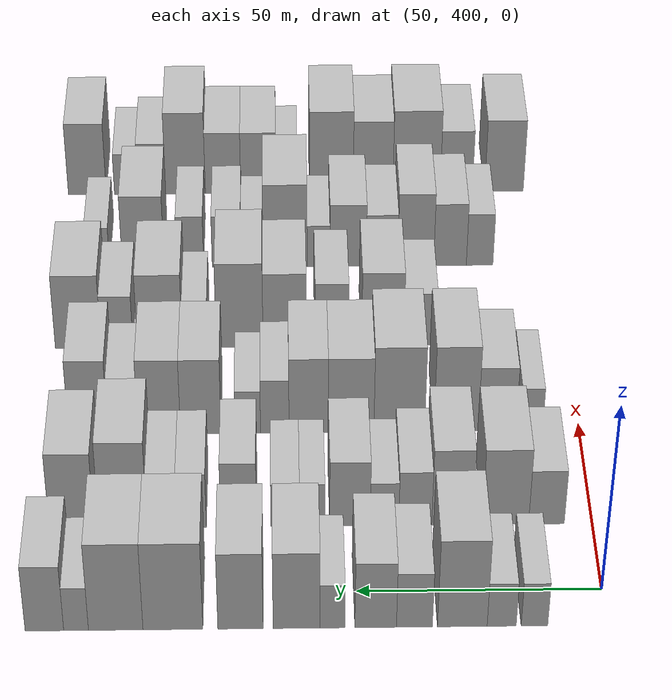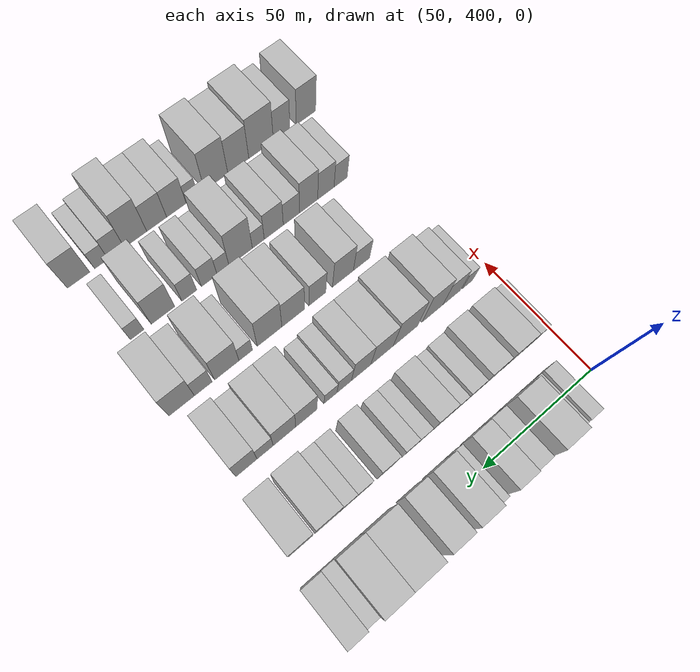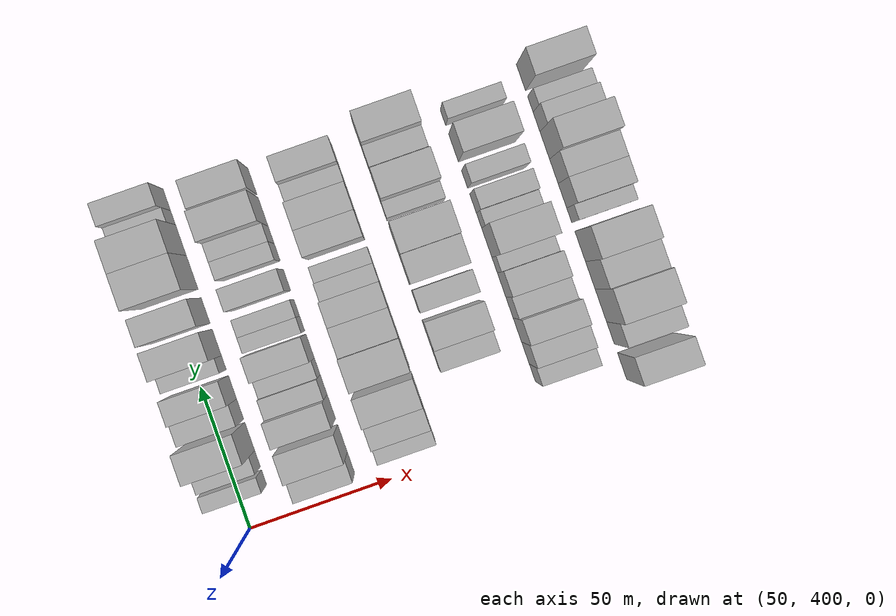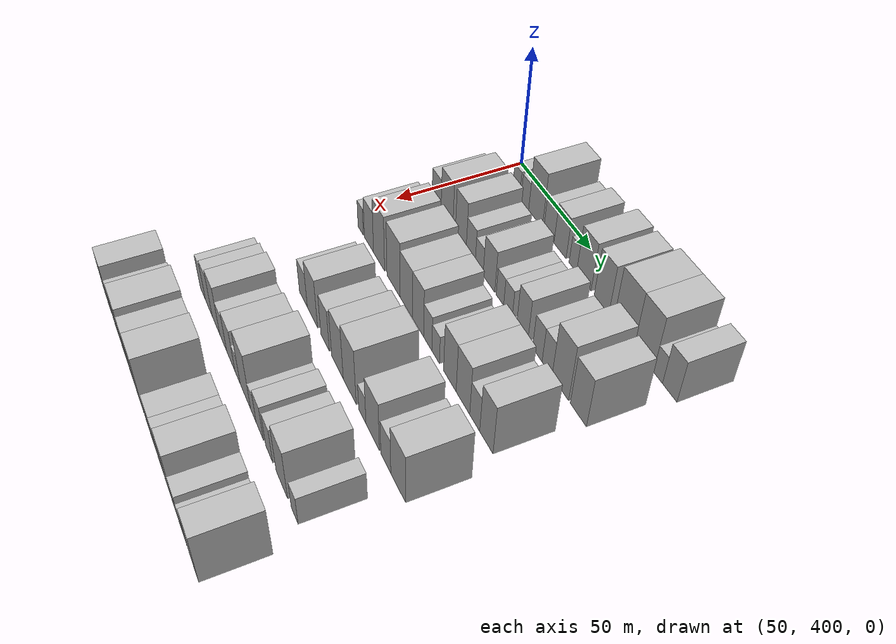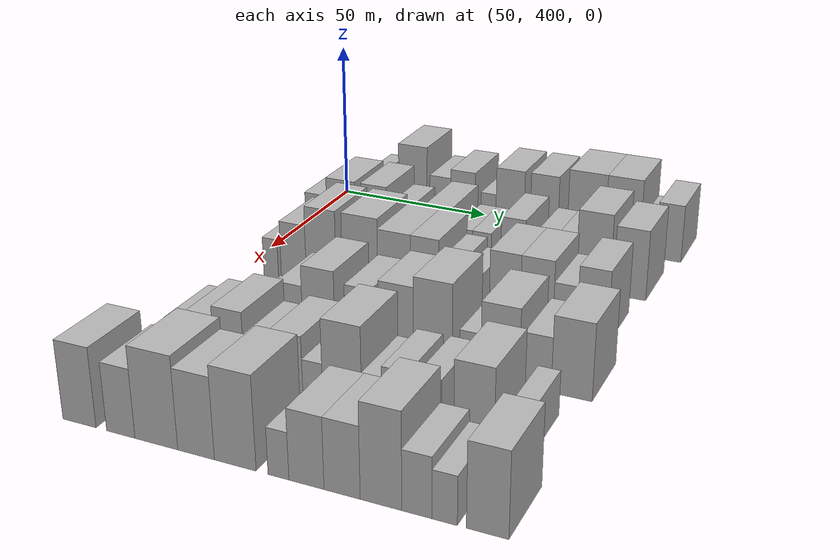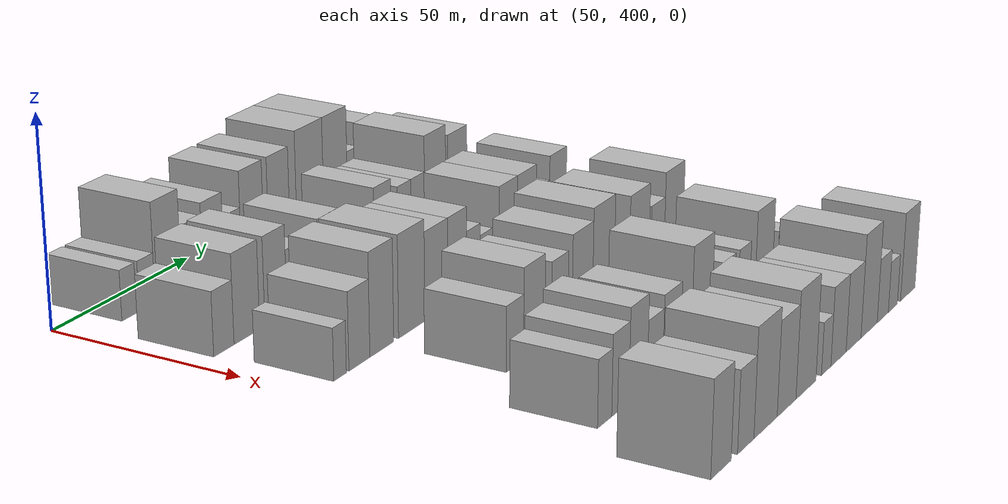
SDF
<sdf version="1.6">
 <world name="default">
  <model name="building_109">
   <static>1</static>
   <pose>50.0000 414.5718 0 0.000000 0.000000 0.000000</pose>
   <link name="link">
    <pose>0 0 6.00 0 0 0</pose>
    <collision name="collision"><geometry><box><size>20.0000 5.3269 12.0000</size></box></geometry></collision>
    <visual name="visual">
     <cast_shadows>0</cast_shadows>
     <geometry><box><size>20.0000 5.3269 12.0000</size></box></geometry>
     <material>
      <script>
       <uri>model://HANNAS_wall/materials/scripts</uri>
       <uri>model://HANNAS_wall/materials/textures</uri>
       <name>vrc/HANNAS_wall</name>
      </script>
     </material>
    </visual>
   </link>
  </model>
  <model name="building_110">
   <static>1</static>
   <pose>50.0000 421.1503 0 0.000000 0.000000 0.000000</pose>
   <link name="link">
    <pose>0 0 6.00 0 0 0</pose>
    <collision name="collision"><geometry><box><size>20.0000 5.8300 12.0000</size></box></geometry></collision>
    <visual name="visual">
     <cast_shadows>0</cast_shadows>
     <geometry><box><size>20.0000 5.8300 12.0000</size></box></geometry>
     <material>
      <script>
       <uri>model://HANNAS_wall/materials/scripts</uri>
       <uri>model://HANNAS_wall/materials/textures</uri>
       <name>vrc/HANNAS_wall</name>
      </script>
     </material>
    </visual>
   </link>
  </model>
  <model name="building_111">
   <static>1</static>
   <pose>50.0000 429.0462 0 0.000000 0.000000 0.000000</pose>
   <link name="link">
    <pose>0 0 12.00 0 0 0</pose>
    <collision name="collision"><geometry><box><size>20.0000 9.9617 24.0000</size></box></geometry></collision>
    <visual name="visual">
     <cast_shadows>0</cast_shadows>
     <geometry><box><size>20.0000 9.9617 24.0000</size></box></geometry>
     <material>
      <script>
       <uri>model://HANNAS_wall/materials/scripts</uri>
       <uri>model://HANNAS_wall/materials/textures</uri>
       <name>vrc/HANNAS_wall</name>
      </script>
     </material>
    </visual>
   </link>
  </model>
  <model name="building_112">
   <static>1</static>
   <pose>50.0000 438.6366 0 0.000000 0.000000 0.000000</pose>
   <link name="link">
    <pose>0 0 7.50 0 0 0</pose>
    <collision name="collision"><geometry><box><size>20.0000 7.2191 15.0000</size></box></geometry></collision>
    <visual name="visual">
     <cast_shadows>0</cast_shadows>
     <geometry><box><size>20.0000 7.2191 15.0000</size></box></geometry>
     <material>
      <script>
       <uri>model://HANNAS_wall/materials/scripts</uri>
       <uri>model://HANNAS_wall/materials/textures</uri>
       <name>vrc/HANNAS_wall</name>
      </script>
     </material>
    </visual>
   </link>
  </model>
  <model name="building_113">
   <static>1</static>
   <pose>50.0000 446.4037 0 0.000000 0.000000 0.000000</pose>
   <link name="link">
    <pose>0 0 9.00 0 0 0</pose>
    <collision name="collision"><geometry><box><size>20.0000 8.3152 18.0000</size></box></geometry></collision>
    <visual name="visual">
     <cast_shadows>0</cast_shadows>
     <geometry><box><size>20.0000 8.3152 18.0000</size></box></geometry>
     <material>
      <script>
       <uri>model://HANNAS_wall/materials/scripts</uri>
       <uri>model://HANNAS_wall/materials/textures</uri>
       <name>vrc/HANNAS_wall</name>
      </script>
     </material>
    </visual>
   </link>
  </model>
  <model name="building_114">
   <static>1</static>
   <pose>50.0000 455.0654 0 0.000000 0.000000 0.000000</pose>
   <link name="link">
    <pose>0 0 6.00 0 0 0</pose>
    <collision name="collision"><geometry><box><size>20.0000 5.0082 12.0000</size></box></geometry></collision>
    <visual name="visual">
     <cast_shadows>0</cast_shadows>
     <geometry><box><size>20.0000 5.0082 12.0000</size></box></geometry>
     <material>
      <script>
       <uri>model://HANNAS_wall/materials/scripts</uri>
       <uri>model://HANNAS_wall/materials/textures</uri>
       <name>vrc/HANNAS_wall</name>
      </script>
     </material>
    </visual>
   </link>
  </model>
  <model name="building_115">
   <static>1</static>
   <pose>50.0000 462.2481 0 0.000000 0.000000 0.000000</pose>
   <link name="link">
    <pose>0 0 10.50 0 0 0</pose>
    <collision name="collision"><geometry><box><size>20.0000 9.3573 21.0000</size></box></geometry></collision>
    <visual name="visual">
     <cast_shadows>0</cast_shadows>
     <geometry><box><size>20.0000 9.3573 21.0000</size></box></geometry>
     <material>
      <script>
       <uri>model://HANNAS_wall/materials/scripts</uri>
       <uri>model://HANNAS_wall/materials/textures</uri>
       <name>vrc/HANNAS_wall</name>
      </script>
     </material>
    </visual>
   </link>
  </model>
  <model name="building_116">
   <static>1</static>
   <pose>50.0000 473.4553 0 0.000000 0.000000 0.000000</pose>
   <link name="link">
    <pose>0 0 10.50 0 0 0</pose>
    <collision name="collision"><geometry><box><size>20.0000 9.0570 21.0000</size></box></geometry></collision>
    <visual name="visual">
     <cast_shadows>0</cast_shadows>
     <geometry><box><size>20.0000 9.0570 21.0000</size></box></geometry>
     <material>
      <script>
       <uri>model://HANNAS_wall/materials/scripts</uri>
       <uri>model://HANNAS_wall/materials/textures</uri>
       <name>vrc/HANNAS_wall</name>
      </script>
     </material>
    </visual>
   </link>
  </model>
  <model name="building_117">
   <static>1</static>
   <pose>50.0000 486.9724 0 0.000000 0.000000 0.000000</pose>
   <link name="link">
    <pose>0 0 12.00 0 0 0</pose>
    <collision name="collision"><geometry><box><size>20.0000 11.9771 24.0000</size></box></geometry></collision>
    <visual name="visual">
     <cast_shadows>0</cast_shadows>
     <geometry><box><size>20.0000 11.9771 24.0000</size></box></geometry>
     <material>
      <script>
       <uri>model://HANNAS_wall/materials/scripts</uri>
       <uri>model://HANNAS_wall/materials/textures</uri>
       <name>vrc/HANNAS_wall</name>
      </script>
     </material>
    </visual>
   </link>
  </model>
  <model name="building_118">
   <static>1</static>
   <pose>50.0000 498.4089 0 0.000000 0.000000 0.000000</pose>
   <link name="link">
    <pose>0 0 12.00 0 0 0</pose>
    <collision name="collision"><geometry><box><size>20.0000 10.8959 24.0000</size></box></geometry></collision>
    <visual name="visual">
     <cast_shadows>0</cast_shadows>
     <geometry><box><size>20.0000 10.8959 24.0000</size></box></geometry>
     <material>
      <script>
       <uri>model://HANNAS_wall/materials/scripts</uri>
       <uri>model://HANNAS_wall/materials/textures</uri>
       <name>vrc/HANNAS_wall</name>
      </script>
     </material>
    </visual>
   </link>
  </model>
  <model name="building_119">
   <static>1</static>
   <pose>50.0000 506.3316 0 0.000000 0.000000 0.000000</pose>
   <link name="link">
    <pose>0 0 6.00 0 0 0</pose>
    <collision name="collision"><geometry><box><size>20.0000 4.9494 12.0000</size></box></geometry></collision>
    <visual name="visual">
     <cast_shadows>0</cast_shadows>
     <geometry><box><size>20.0000 4.9494 12.0000</size></box></geometry>
     <material>
      <script>
       <uri>model://HANNAS_wall/materials/scripts</uri>
       <uri>model://HANNAS_wall/materials/textures</uri>
       <name>vrc/HANNAS_wall</name>
      </script>
     </material>
    </visual>
   </link>
  </model>
  <model name="building_120">
   <static>1</static>
   <pose>50.0000 512.6554 0 0.000000 0.000000 0.000000</pose>
   <link name="link">
    <pose>0 0 9.00 0 0 0</pose>
    <collision name="collision"><geometry><box><size>20.0000 7.6981 18.0000</size></box></geometry></collision>
    <visual name="visual">
     <cast_shadows>0</cast_shadows>
     <geometry><box><size>20.0000 7.6981 18.0000</size></box></geometry>
     <material>
      <script>
       <uri>model://HANNAS_wall/materials/scripts</uri>
       <uri>model://HANNAS_wall/materials/textures</uri>
       <name>vrc/HANNAS_wall</name>
      </script>
     </material>
    </visual>
   </link>
  </model>
  <model name="building_224">
   <static>1</static>
   <pose>79.0000 409.6688 0 0.000000 0.000000 0.000000</pose>
   <link name="link">
    <pose>0 0 7.50 0 0 0</pose>
    <collision name="collision"><geometry><box><size>20.0000 7.4757 15.0000</size></box></geometry></collision>
    <visual name="visual">
     <cast_shadows>0</cast_shadows>
     <geometry><box><size>20.0000 7.4757 15.0000</size></box></geometry>
     <material>
      <script>
       <uri>model://HANNAS_wall/materials/scripts</uri>
       <uri>model://HANNAS_wall/materials/textures</uri>
       <name>vrc/HANNAS_wall</name>
      </script>
     </material>
    </visual>
   </link>
  </model>
  <model name="building_225">
   <static>1</static>
   <pose>79.0000 418.2588 0 0.000000 0.000000 0.000000</pose>
   <link name="link">
    <pose>0 0 10.50 0 0 0</pose>
    <collision name="collision"><geometry><box><size>20.0000 9.7043 21.0000</size></box></geometry></collision>
    <visual name="visual">
     <cast_shadows>0</cast_shadows>
     <geometry><box><size>20.0000 9.7043 21.0000</size></box></geometry>
     <material>
      <script>
       <uri>model://HANNAS_wall/materials/scripts</uri>
       <uri>model://HANNAS_wall/materials/textures</uri>
       <name>vrc/HANNAS_wall</name>
      </script>
     </material>
    </visual>
   </link>
  </model>
  <model name="building_226">
   <static>1</static>
   <pose>79.0000 429.3999 0 0.000000 0.000000 0.000000</pose>
   <link name="link">
    <pose>0 0 10.50 0 0 0</pose>
    <collision name="collision"><geometry><box><size>20.0000 8.5780 21.0000</size></box></geometry></collision>
    <visual name="visual">
     <cast_shadows>0</cast_shadows>
     <geometry><box><size>20.0000 8.5780 21.0000</size></box></geometry>
     <material>
      <script>
       <uri>model://HANNAS_wall/materials/scripts</uri>
       <uri>model://HANNAS_wall/materials/textures</uri>
       <name>vrc/HANNAS_wall</name>
      </script>
     </material>
    </visual>
   </link>
  </model>
  <model name="building_227">
   <static>1</static>
   <pose>79.0000 437.1485 0 0.000000 0.000000 0.000000</pose>
   <link name="link">
    <pose>0 0 7.50 0 0 0</pose>
    <collision name="collision"><geometry><box><size>20.0000 6.9192 15.0000</size></box></geometry></collision>
    <visual name="visual">
     <cast_shadows>0</cast_shadows>
     <geometry><box><size>20.0000 6.9192 15.0000</size></box></geometry>
     <material>
      <script>
       <uri>model://HANNAS_wall/materials/scripts</uri>
       <uri>model://HANNAS_wall/materials/textures</uri>
       <name>vrc/HANNAS_wall</name>
      </script>
     </material>
    </visual>
   </link>
  </model>
  <model name="building_228">
   <static>1</static>
   <pose>79.0000 443.5894 0 0.000000 0.000000 0.000000</pose>
   <link name="link">
    <pose>0 0 6.00 0 0 0</pose>
    <collision name="collision"><geometry><box><size>20.0000 5.9624 12.0000</size></box></geometry></collision>
    <visual name="visual">
     <cast_shadows>0</cast_shadows>
     <geometry><box><size>20.0000 5.9624 12.0000</size></box></geometry>
     <material>
      <script>
       <uri>model://HANNAS_wall/materials/scripts</uri>
       <uri>model://HANNAS_wall/materials/textures</uri>
       <name>vrc/HANNAS_wall</name>
      </script>
     </material>
    </visual>
   </link>
  </model>
  <model name="building_229">
   <static>1</static>
   <pose>79.0000 450.8058 0 0.000000 0.000000 0.000000</pose>
   <link name="link">
    <pose>0 0 9.00 0 0 0</pose>
    <collision name="collision"><geometry><box><size>20.0000 8.4704 18.0000</size></box></geometry></collision>
    <visual name="visual">
     <cast_shadows>0</cast_shadows>
     <geometry><box><size>20.0000 8.4704 18.0000</size></box></geometry>
     <material>
      <script>
       <uri>model://HANNAS_wall/materials/scripts</uri>
       <uri>model://HANNAS_wall/materials/textures</uri>
       <name>vrc/HANNAS_wall</name>
      </script>
     </material>
    </visual>
   </link>
  </model>
  <model name="building_230">
   <static>1</static>
   <pose>79.0000 458.6949 0 0.000000 0.000000 0.000000</pose>
   <link name="link">
    <pose>0 0 6.00 0 0 0</pose>
    <collision name="collision"><geometry><box><size>20.0000 5.3078 12.0000</size></box></geometry></collision>
    <visual name="visual">
     <cast_shadows>0</cast_shadows>
     <geometry><box><size>20.0000 5.3078 12.0000</size></box></geometry>
     <material>
      <script>
       <uri>model://HANNAS_wall/materials/scripts</uri>
       <uri>model://HANNAS_wall/materials/textures</uri>
       <name>vrc/HANNAS_wall</name>
      </script>
     </material>
    </visual>
   </link>
  </model>
  <model name="building_231">
   <static>1</static>
   <pose>79.0000 464.3218 0 0.000000 0.000000 0.000000</pose>
   <link name="link">
    <pose>0 0 6.00 0 0 0</pose>
    <collision name="collision"><geometry><box><size>20.0000 5.9460 12.0000</size></box></geometry></collision>
    <visual name="visual">
     <cast_shadows>0</cast_shadows>
     <geometry><box><size>20.0000 5.9460 12.0000</size></box></geometry>
     <material>
      <script>
       <uri>model://HANNAS_wall/materials/scripts</uri>
       <uri>model://HANNAS_wall/materials/textures</uri>
       <name>vrc/HANNAS_wall</name>
      </script>
     </material>
    </visual>
   </link>
  </model>
  <model name="building_232">
   <static>1</static>
   <pose>79.0000 474.0422 0 0.000000 0.000000 0.000000</pose>
   <link name="link">
    <pose>0 0 9.00 0 0 0</pose>
    <collision name="collision"><geometry><box><size>20.0000 7.4949 18.0000</size></box></geometry></collision>
    <visual name="visual">
     <cast_shadows>0</cast_shadows>
     <geometry><box><size>20.0000 7.4949 18.0000</size></box></geometry>
     <material>
      <script>
       <uri>model://HANNAS_wall/materials/scripts</uri>
       <uri>model://HANNAS_wall/materials/textures</uri>
       <name>vrc/HANNAS_wall</name>
      </script>
     </material>
    </visual>
   </link>
  </model>
  <model name="building_233">
   <static>1</static>
   <pose>79.0000 483.8710 0 0.000000 0.000000 0.000000</pose>
   <link name="link">
    <pose>0 0 7.50 0 0 0</pose>
    <collision name="collision"><geometry><box><size>20.0000 6.1628 15.0000</size></box></geometry></collision>
    <visual name="visual">
     <cast_shadows>0</cast_shadows>
     <geometry><box><size>20.0000 6.1628 15.0000</size></box></geometry>
     <material>
      <script>
       <uri>model://HANNAS_wall/materials/scripts</uri>
       <uri>model://HANNAS_wall/materials/textures</uri>
       <name>vrc/HANNAS_wall</name>
      </script>
     </material>
    </visual>
   </link>
  </model>
  <model name="building_234">
   <static>1</static>
   <pose>79.0000 490.0632 0 0.000000 0.000000 0.000000</pose>
   <link name="link">
    <pose>0 0 7.50 0 0 0</pose>
    <collision name="collision"><geometry><box><size>20.0000 6.2217 15.0000</size></box></geometry></collision>
    <visual name="visual">
     <cast_shadows>0</cast_shadows>
     <geometry><box><size>20.0000 6.2217 15.0000</size></box></geometry>
     <material>
      <script>
       <uri>model://HANNAS_wall/materials/scripts</uri>
       <uri>model://HANNAS_wall/materials/textures</uri>
       <name>vrc/HANNAS_wall</name>
      </script>
     </material>
    </visual>
   </link>
  </model>
  <model name="building_235">
   <static>1</static>
   <pose>79.0000 498.2062 0 0.000000 0.000000 0.000000</pose>
   <link name="link">
    <pose>0 0 12.00 0 0 0</pose>
    <collision name="collision"><geometry><box><size>20.0000 10.0642 24.0000</size></box></geometry></collision>
    <visual name="visual">
     <cast_shadows>0</cast_shadows>
     <geometry><box><size>20.0000 10.0642 24.0000</size></box></geometry>
     <material>
      <script>
       <uri>model://HANNAS_wall/materials/scripts</uri>
       <uri>model://HANNAS_wall/materials/textures</uri>
       <name>vrc/HANNAS_wall</name>
      </script>
     </material>
    </visual>
   </link>
  </model>
  <model name="building_236">
   <static>1</static>
   <pose>79.0000 508.9163 0 0.000000 0.000000 0.000000</pose>
   <link name="link">
    <pose>0 0 10.50 0 0 0</pose>
    <collision name="collision"><geometry><box><size>20.0000 9.3560 21.0000</size></box></geometry></collision>
    <visual name="visual">
     <cast_shadows>0</cast_shadows>
     <geometry><box><size>20.0000 9.3560 21.0000</size></box></geometry>
     <material>
      <script>
       <uri>model://HANNAS_wall/materials/scripts</uri>
       <uri>model://HANNAS_wall/materials/textures</uri>
       <name>vrc/HANNAS_wall</name>
      </script>
     </material>
    </visual>
   </link>
  </model>
  <model name="building_341">
   <static>1</static>
   <pose>108.0000 410.4109 0 0.000000 0.000000 0.000000</pose>
   <link name="link">
    <pose>0 0 6.00 0 0 0</pose>
    <collision name="collision"><geometry><box><size>20.0000 4.8456 12.0000</size></box></geometry></collision>
    <visual name="visual">
     <cast_shadows>0</cast_shadows>
     <geometry><box><size>20.0000 4.8456 12.0000</size></box></geometry>
     <material>
      <script>
       <uri>model://HANNAS_wall/materials/scripts</uri>
       <uri>model://HANNAS_wall/materials/textures</uri>
       <name>vrc/HANNAS_wall</name>
      </script>
     </material>
    </visual>
   </link>
  </model>
  <model name="building_342">
   <static>1</static>
   <pose>108.0000 417.9589 0 0.000000 0.000000 0.000000</pose>
   <link name="link">
    <pose>0 0 9.00 0 0 0</pose>
    <collision name="collision"><geometry><box><size>20.0000 8.2504 18.0000</size></box></geometry></collision>
    <visual name="visual">
     <cast_shadows>0</cast_shadows>
     <geometry><box><size>20.0000 8.2504 18.0000</size></box></geometry>
     <material>
      <script>
       <uri>model://HANNAS_wall/materials/scripts</uri>
       <uri>model://HANNAS_wall/materials/textures</uri>
       <name>vrc/HANNAS_wall</name>
      </script>
     </material>
    </visual>
   </link>
  </model>
  <model name="building_343">
   <static>1</static>
   <pose>108.0000 426.9201 0 0.000000 0.000000 0.000000</pose>
   <link name="link">
    <pose>0 0 12.00 0 0 0</pose>
    <collision name="collision"><geometry><box><size>20.0000 9.6720 24.0000</size></box></geometry></collision>
    <visual name="visual">
     <cast_shadows>0</cast_shadows>
     <geometry><box><size>20.0000 9.6720 24.0000</size></box></geometry>
     <material>
      <script>
       <uri>model://HANNAS_wall/materials/scripts</uri>
       <uri>model://HANNAS_wall/materials/textures</uri>
       <name>vrc/HANNAS_wall</name>
      </script>
     </material>
    </visual>
   </link>
  </model>
  <model name="building_344">
   <static>1</static>
   <pose>108.0000 439.2891 0 0.000000 0.000000 0.000000</pose>
   <link name="link">
    <pose>0 0 12.00 0 0 0</pose>
    <collision name="collision"><geometry><box><size>20.0000 11.0659 24.0000</size></box></geometry></collision>
    <visual name="visual">
     <cast_shadows>0</cast_shadows>
     <geometry><box><size>20.0000 11.0659 24.0000</size></box></geometry>
     <material>
      <script>
       <uri>model://HANNAS_wall/materials/scripts</uri>
       <uri>model://HANNAS_wall/materials/textures</uri>
       <name>vrc/HANNAS_wall</name>
      </script>
     </material>
    </visual>
   </link>
  </model>
  <model name="building_345">
   <static>1</static>
   <pose>108.0000 449.8083 0 0.000000 0.000000 0.000000</pose>
   <link name="link">
    <pose>0 0 10.50 0 0 0</pose>
    <collision name="collision"><geometry><box><size>20.0000 9.9726 21.0000</size></box></geometry></collision>
    <visual name="visual">
     <cast_shadows>0</cast_shadows>
     <geometry><box><size>20.0000 9.9726 21.0000</size></box></geometry>
     <material>
      <script>
       <uri>model://HANNAS_wall/materials/scripts</uri>
       <uri>model://HANNAS_wall/materials/textures</uri>
       <name>vrc/HANNAS_wall</name>
      </script>
     </material>
    </visual>
   </link>
  </model>
  <model name="building_346">
   <static>1</static>
   <pose>108.0000 459.0569 0 0.000000 0.000000 0.000000</pose>
   <link name="link">
    <pose>0 0 10.50 0 0 0</pose>
    <collision name="collision"><geometry><box><size>20.0000 8.5246 21.0000</size></box></geometry></collision>
    <visual name="visual">
     <cast_shadows>0</cast_shadows>
     <geometry><box><size>20.0000 8.5246 21.0000</size></box></geometry>
     <material>
      <script>
       <uri>model://HANNAS_wall/materials/scripts</uri>
       <uri>model://HANNAS_wall/materials/textures</uri>
       <name>vrc/HANNAS_wall</name>
      </script>
     </material>
    </visual>
   </link>
  </model>
  <model name="building_347">
   <static>1</static>
   <pose>108.0000 466.4197 0 0.000000 0.000000 0.000000</pose>
   <link name="link">
    <pose>0 0 7.50 0 0 0</pose>
    <collision name="collision"><geometry><box><size>20.0000 6.2009 15.0000</size></box></geometry></collision>
    <visual name="visual">
     <cast_shadows>0</cast_shadows>
     <geometry><box><size>20.0000 6.2009 15.0000</size></box></geometry>
     <material>
      <script>
       <uri>model://HANNAS_wall/materials/scripts</uri>
       <uri>model://HANNAS_wall/materials/textures</uri>
       <name>vrc/HANNAS_wall</name>
      </script>
     </material>
    </visual>
   </link>
  </model>
  <model name="building_348">
   <static>1</static>
   <pose>108.0000 472.3121 0 0.000000 0.000000 0.000000</pose>
   <link name="link">
    <pose>0 0 6.00 0 0 0</pose>
    <collision name="collision"><geometry><box><size>20.0000 5.5839 12.0000</size></box></geometry></collision>
    <visual name="visual">
     <cast_shadows>0</cast_shadows>
     <geometry><box><size>20.0000 5.5839 12.0000</size></box></geometry>
     <material>
      <script>
       <uri>model://HANNAS_wall/materials/scripts</uri>
       <uri>model://HANNAS_wall/materials/textures</uri>
       <name>vrc/HANNAS_wall</name>
      </script>
     </material>
    </visual>
   </link>
  </model>
  <model name="building_349">
   <static>1</static>
   <pose>108.0000 482.5232 0 0.000000 0.000000 0.000000</pose>
   <link name="link">
    <pose>0 0 10.50 0 0 0</pose>
    <collision name="collision"><geometry><box><size>20.0000 8.8384 21.0000</size></box></geometry></collision>
    <visual name="visual">
     <cast_shadows>0</cast_shadows>
     <geometry><box><size>20.0000 8.8384 21.0000</size></box></geometry>
     <material>
      <script>
       <uri>model://HANNAS_wall/materials/scripts</uri>
       <uri>model://HANNAS_wall/materials/textures</uri>
       <name>vrc/HANNAS_wall</name>
      </script>
     </material>
    </visual>
   </link>
  </model>
  <model name="building_350">
   <static>1</static>
   <pose>108.0000 491.5692 0 0.000000 0.000000 0.000000</pose>
   <link name="link">
    <pose>0 0 10.50 0 0 0</pose>
    <collision name="collision"><geometry><box><size>20.0000 9.2536 21.0000</size></box></geometry></collision>
    <visual name="visual">
     <cast_shadows>0</cast_shadows>
     <geometry><box><size>20.0000 9.2536 21.0000</size></box></geometry>
     <material>
      <script>
       <uri>model://HANNAS_wall/materials/scripts</uri>
       <uri>model://HANNAS_wall/materials/textures</uri>
       <name>vrc/HANNAS_wall</name>
      </script>
     </material>
    </visual>
   </link>
  </model>
  <model name="building_351">
   <static>1</static>
   <pose>108.0000 499.4731 0 0.000000 0.000000 0.000000</pose>
   <link name="link">
    <pose>0 0 7.50 0 0 0</pose>
    <collision name="collision"><geometry><box><size>20.0000 6.5543 15.0000</size></box></geometry></collision>
    <visual name="visual">
     <cast_shadows>0</cast_shadows>
     <geometry><box><size>20.0000 6.5543 15.0000</size></box></geometry>
     <material>
      <script>
       <uri>model://HANNAS_wall/materials/scripts</uri>
       <uri>model://HANNAS_wall/materials/textures</uri>
       <name>vrc/HANNAS_wall</name>
      </script>
     </material>
    </visual>
   </link>
  </model>
  <model name="building_352">
   <static>1</static>
   <pose>108.0000 507.0082 0 0.000000 0.000000 0.000000</pose>
   <link name="link">
    <pose>0 0 10.50 0 0 0</pose>
    <collision name="collision"><geometry><box><size>20.0000 8.5158 21.0000</size></box></geometry></collision>
    <visual name="visual">
     <cast_shadows>0</cast_shadows>
     <geometry><box><size>20.0000 8.5158 21.0000</size></box></geometry>
     <material>
      <script>
       <uri>model://HANNAS_wall/materials/scripts</uri>
       <uri>model://HANNAS_wall/materials/textures</uri>
       <name>vrc/HANNAS_wall</name>
      </script>
     </material>
    </visual>
   </link>
  </model>
  <model name="building_452">
   <static>1</static>
   <pose>137.0000 433.3571 0 0.000000 0.000000 0.000000</pose>
   <link name="link">
    <pose>0 0 7.50 0 0 0</pose>
    <collision name="collision"><geometry><box><size>20.0000 7.4831 15.0000</size></box></geometry></collision>
    <visual name="visual">
     <cast_shadows>0</cast_shadows>
     <geometry><box><size>20.0000 7.4831 15.0000</size></box></geometry>
     <material>
      <script>
       <uri>model://HANNAS_wall/materials/scripts</uri>
       <uri>model://HANNAS_wall/materials/textures</uri>
       <name>vrc/HANNAS_wall</name>
      </script>
     </material>
    </visual>
   </link>
  </model>
  <model name="building_453">
   <static>1</static>
   <pose>137.0000 441.8654 0 0.000000 0.000000 0.000000</pose>
   <link name="link">
    <pose>0 0 10.50 0 0 0</pose>
    <collision name="collision"><geometry><box><size>20.0000 9.5335 21.0000</size></box></geometry></collision>
    <visual name="visual">
     <cast_shadows>0</cast_shadows>
     <geometry><box><size>20.0000 9.5335 21.0000</size></box></geometry>
     <material>
      <script>
       <uri>model://HANNAS_wall/materials/scripts</uri>
       <uri>model://HANNAS_wall/materials/textures</uri>
       <name>vrc/HANNAS_wall</name>
      </script>
     </material>
    </visual>
   </link>
  </model>
  <model name="building_454">
   <static>1</static>
   <pose>137.0000 453.4064 0 0.000000 0.000000 0.000000</pose>
   <link name="link">
    <pose>0 0 9.00 0 0 0</pose>
    <collision name="collision"><geometry><box><size>20.0000 7.5486 18.0000</size></box></geometry></collision>
    <visual name="visual">
     <cast_shadows>0</cast_shadows>
     <geometry><box><size>20.0000 7.5486 18.0000</size></box></geometry>
     <material>
      <script>
       <uri>model://HANNAS_wall/materials/scripts</uri>
       <uri>model://HANNAS_wall/materials/textures</uri>
       <name>vrc/HANNAS_wall</name>
      </script>
     </material>
    </visual>
   </link>
  </model>
  <model name="building_455">
   <static>1</static>
   <pose>137.0000 464.0827 0 0.000000 0.000000 0.000000</pose>
   <link name="link">
    <pose>0 0 10.50 0 0 0</pose>
    <collision name="collision"><geometry><box><size>20.0000 9.8039 21.0000</size></box></geometry></collision>
    <visual name="visual">
     <cast_shadows>0</cast_shadows>
     <geometry><box><size>20.0000 9.8039 21.0000</size></box></geometry>
     <material>
      <script>
       <uri>model://HANNAS_wall/materials/scripts</uri>
       <uri>model://HANNAS_wall/materials/textures</uri>
       <name>vrc/HANNAS_wall</name>
      </script>
     </material>
    </visual>
   </link>
  </model>
  <model name="building_456">
   <static>1</static>
   <pose>137.0000 474.2810 0 0.000000 0.000000 0.000000</pose>
   <link name="link">
    <pose>0 0 12.00 0 0 0</pose>
    <collision name="collision"><geometry><box><size>20.0000 10.5926 24.0000</size></box></geometry></collision>
    <visual name="visual">
     <cast_shadows>0</cast_shadows>
     <geometry><box><size>20.0000 10.5926 24.0000</size></box></geometry>
     <material>
      <script>
       <uri>model://HANNAS_wall/materials/scripts</uri>
       <uri>model://HANNAS_wall/materials/textures</uri>
       <name>vrc/HANNAS_wall</name>
      </script>
     </material>
    </visual>
   </link>
  </model>
  <model name="building_457">
   <static>1</static>
   <pose>137.0000 484.4204 0 0.000000 0.000000 0.000000</pose>
   <link name="link">
    <pose>0 0 6.00 0 0 0</pose>
    <collision name="collision"><geometry><box><size>20.0000 5.6862 12.0000</size></box></geometry></collision>
    <visual name="visual">
     <cast_shadows>0</cast_shadows>
     <geometry><box><size>20.0000 5.6862 12.0000</size></box></geometry>
     <material>
      <script>
       <uri>model://HANNAS_wall/materials/scripts</uri>
       <uri>model://HANNAS_wall/materials/textures</uri>
       <name>vrc/HANNAS_wall</name>
      </script>
     </material>
    </visual>
   </link>
  </model>
  <model name="building_458">
   <static>1</static>
   <pose>137.0000 492.3615 0 0.000000 0.000000 0.000000</pose>
   <link name="link">
    <pose>0 0 10.50 0 0 0</pose>
    <collision name="collision"><geometry><box><size>20.0000 10.1960 21.0000</size></box></geometry></collision>
    <visual name="visual">
     <cast_shadows>0</cast_shadows>
     <geometry><box><size>20.0000 10.1960 21.0000</size></box></geometry>
     <material>
      <script>
       <uri>model://HANNAS_wall/materials/scripts</uri>
       <uri>model://HANNAS_wall/materials/textures</uri>
       <name>vrc/HANNAS_wall</name>
      </script>
     </material>
    </visual>
   </link>
  </model>
  <model name="building_459">
   <static>1</static>
   <pose>137.0000 502.0818 0 0.000000 0.000000 0.000000</pose>
   <link name="link">
    <pose>0 0 7.50 0 0 0</pose>
    <collision name="collision"><geometry><box><size>20.0000 7.2447 15.0000</size></box></geometry></collision>
    <visual name="visual">
     <cast_shadows>0</cast_shadows>
     <geometry><box><size>20.0000 7.2447 15.0000</size></box></geometry>
     <material>
      <script>
       <uri>model://HANNAS_wall/materials/scripts</uri>
       <uri>model://HANNAS_wall/materials/textures</uri>
       <name>vrc/HANNAS_wall</name>
      </script>
     </material>
    </visual>
   </link>
  </model>
  <model name="building_460">
   <static>1</static>
   <pose>137.0000 510.8769 0 0.000000 0.000000 0.000000</pose>
   <link name="link">
    <pose>0 0 10.50 0 0 0</pose>
    <collision name="collision"><geometry><box><size>20.0000 10.3454 21.0000</size></box></geometry></collision>
    <visual name="visual">
     <cast_shadows>0</cast_shadows>
     <geometry><box><size>20.0000 10.3454 21.0000</size></box></geometry>
     <material>
      <script>
       <uri>model://HANNAS_wall/materials/scripts</uri>
       <uri>model://HANNAS_wall/materials/textures</uri>
       <name>vrc/HANNAS_wall</name>
      </script>
     </material>
    </visual>
   </link>
  </model>
  <model name="building_571">
   <static>1</static>
   <pose>166.0000 417.9203 0 0.000000 0.000000 0.000000</pose>
   <link name="link">
    <pose>0 0 7.50 0 0 0</pose>
    <collision name="collision"><geometry><box><size>20.0000 6.2749 15.0000</size></box></geometry></collision>
    <visual name="visual">
     <cast_shadows>0</cast_shadows>
     <geometry><box><size>20.0000 6.2749 15.0000</size></box></geometry>
     <material>
      <script>
       <uri>model://HANNAS_wall/materials/scripts</uri>
       <uri>model://HANNAS_wall/materials/textures</uri>
       <name>vrc/HANNAS_wall</name>
      </script>
     </material>
    </visual>
   </link>
  </model>
  <model name="building_572">
   <static>1</static>
   <pose>166.0000 424.9168 0 0.000000 0.000000 0.000000</pose>
   <link name="link">
    <pose>0 0 9.00 0 0 0</pose>
    <collision name="collision"><geometry><box><size>20.0000 7.7183 18.0000</size></box></geometry></collision>
    <visual name="visual">
     <cast_shadows>0</cast_shadows>
     <geometry><box><size>20.0000 7.7183 18.0000</size></box></geometry>
     <material>
      <script>
       <uri>model://HANNAS_wall/materials/scripts</uri>
       <uri>model://HANNAS_wall/materials/textures</uri>
       <name>vrc/HANNAS_wall</name>
      </script>
     </material>
    </visual>
   </link>
  </model>
  <model name="building_573">
   <static>1</static>
   <pose>166.0000 433.0124 0 0.000000 0.000000 0.000000</pose>
   <link name="link">
    <pose>0 0 10.50 0 0 0</pose>
    <collision name="collision"><geometry><box><size>20.0000 8.4729 21.0000</size></box></geometry></collision>
    <visual name="visual">
     <cast_shadows>0</cast_shadows>
     <geometry><box><size>20.0000 8.4729 21.0000</size></box></geometry>
     <material>
      <script>
       <uri>model://HANNAS_wall/materials/scripts</uri>
       <uri>model://HANNAS_wall/materials/textures</uri>
       <name>vrc/HANNAS_wall</name>
      </script>
     </material>
    </visual>
   </link>
  </model>
  <model name="building_574">
   <static>1</static>
   <pose>166.0000 440.9650 0 0.000000 0.000000 0.000000</pose>
   <link name="link">
    <pose>0 0 7.50 0 0 0</pose>
    <collision name="collision"><geometry><box><size>20.0000 7.4322 15.0000</size></box></geometry></collision>
    <visual name="visual">
     <cast_shadows>0</cast_shadows>
     <geometry><box><size>20.0000 7.4322 15.0000</size></box></geometry>
     <material>
      <script>
       <uri>model://HANNAS_wall/materials/scripts</uri>
       <uri>model://HANNAS_wall/materials/textures</uri>
       <name>vrc/HANNAS_wall</name>
      </script>
     </material>
    </visual>
   </link>
  </model>
  <model name="building_575">
   <static>1</static>
   <pose>166.0000 448.9746 0 0.000000 0.000000 0.000000</pose>
   <link name="link">
    <pose>0 0 9.00 0 0 0</pose>
    <collision name="collision"><geometry><box><size>20.0000 8.5871 18.0000</size></box></geometry></collision>
    <visual name="visual">
     <cast_shadows>0</cast_shadows>
     <geometry><box><size>20.0000 8.5871 18.0000</size></box></geometry>
     <material>
      <script>
       <uri>model://HANNAS_wall/materials/scripts</uri>
       <uri>model://HANNAS_wall/materials/textures</uri>
       <name>vrc/HANNAS_wall</name>
      </script>
     </material>
    </visual>
   </link>
  </model>
  <model name="building_576">
   <static>1</static>
   <pose>166.0000 455.9437 0 0.000000 0.000000 0.000000</pose>
   <link name="link">
    <pose>0 0 6.00 0 0 0</pose>
    <collision name="collision"><geometry><box><size>20.0000 5.3511 12.0000</size></box></geometry></collision>
    <visual name="visual">
     <cast_shadows>0</cast_shadows>
     <geometry><box><size>20.0000 5.3511 12.0000</size></box></geometry>
     <material>
      <script>
       <uri>model://HANNAS_wall/materials/scripts</uri>
       <uri>model://HANNAS_wall/materials/textures</uri>
       <name>vrc/HANNAS_wall</name>
      </script>
     </material>
    </visual>
   </link>
  </model>
  <model name="building_577">
   <static>1</static>
   <pose>166.0000 463.7901 0 0.000000 0.000000 0.000000</pose>
   <link name="link">
    <pose>0 0 12.00 0 0 0</pose>
    <collision name="collision"><geometry><box><size>20.0000 10.3417 24.0000</size></box></geometry></collision>
    <visual name="visual">
     <cast_shadows>0</cast_shadows>
     <geometry><box><size>20.0000 10.3417 24.0000</size></box></geometry>
     <material>
      <script>
       <uri>model://HANNAS_wall/materials/scripts</uri>
       <uri>model://HANNAS_wall/materials/textures</uri>
       <name>vrc/HANNAS_wall</name>
      </script>
     </material>
    </visual>
   </link>
  </model>
  <model name="building_578">
   <static>1</static>
   <pose>166.0000 471.5714 0 0.000000 0.000000 0.000000</pose>
   <link name="link">
    <pose>0 0 6.00 0 0 0</pose>
    <collision name="collision"><geometry><box><size>20.0000 5.2209 12.0000</size></box></geometry></collision>
    <visual name="visual">
     <cast_shadows>0</cast_shadows>
     <geometry><box><size>20.0000 5.2209 12.0000</size></box></geometry>
     <material>
      <script>
       <uri>model://HANNAS_wall/materials/scripts</uri>
       <uri>model://HANNAS_wall/materials/textures</uri>
       <name>vrc/HANNAS_wall</name>
      </script>
     </material>
    </visual>
   </link>
  </model>
  <model name="building_579">
   <static>1</static>
   <pose>166.0000 477.5768 0 0.000000 0.000000 0.000000</pose>
   <link name="link">
    <pose>0 0 7.50 0 0 0</pose>
    <collision name="collision"><geometry><box><size>20.0000 6.7899 15.0000</size></box></geometry></collision>
    <visual name="visual">
     <cast_shadows>0</cast_shadows>
     <geometry><box><size>20.0000 6.7899 15.0000</size></box></geometry>
     <material>
      <script>
       <uri>model://HANNAS_wall/materials/scripts</uri>
       <uri>model://HANNAS_wall/materials/textures</uri>
       <name>vrc/HANNAS_wall</name>
      </script>
     </material>
    </visual>
   </link>
  </model>
  <model name="building_580">
   <static>1</static>
   <pose>166.0000 486.1289 0 0.000000 0.000000 0.000000</pose>
   <link name="link">
    <pose>0 0 7.50 0 0 0</pose>
    <collision name="collision"><geometry><box><size>20.0000 6.3143 15.0000</size></box></geometry></collision>
    <visual name="visual">
     <cast_shadows>0</cast_shadows>
     <geometry><box><size>20.0000 6.3143 15.0000</size></box></geometry>
     <material>
      <script>
       <uri>model://HANNAS_wall/materials/scripts</uri>
       <uri>model://HANNAS_wall/materials/textures</uri>
       <name>vrc/HANNAS_wall</name>
      </script>
     </material>
    </visual>
   </link>
  </model>
  <model name="building_581">
   <static>1</static>
   <pose>166.0000 497.2129 0 0.000000 0.000000 0.000000</pose>
   <link name="link">
    <pose>0 0 10.50 0 0 0</pose>
    <collision name="collision"><geometry><box><size>20.0000 9.8537 21.0000</size></box></geometry></collision>
    <visual name="visual">
     <cast_shadows>0</cast_shadows>
     <geometry><box><size>20.0000 9.8537 21.0000</size></box></geometry>
     <material>
      <script>
       <uri>model://HANNAS_wall/materials/scripts</uri>
       <uri>model://HANNAS_wall/materials/textures</uri>
       <name>vrc/HANNAS_wall</name>
      </script>
     </material>
    </visual>
   </link>
  </model>
  <model name="building_582">
   <static>1</static>
   <pose>166.0000 507.9261 0 0.000000 0.000000 0.000000</pose>
   <link name="link">
    <pose>0 0 6.00 0 0 0</pose>
    <collision name="collision"><geometry><box><size>20.0000 5.5728 12.0000</size></box></geometry></collision>
    <visual name="visual">
     <cast_shadows>0</cast_shadows>
     <geometry><box><size>20.0000 5.5728 12.0000</size></box></geometry>
     <material>
      <script>
       <uri>model://HANNAS_wall/materials/scripts</uri>
       <uri>model://HANNAS_wall/materials/textures</uri>
       <name>vrc/HANNAS_wall</name>
      </script>
     </material>
    </visual>
   </link>
  </model>
  <model name="building_686">
   <static>1</static>
   <pose>195.0000 410.0467 0 0.000000 0.000000 0.000000</pose>
   <link name="link">
    <pose>0 0 10.50 0 0 0</pose>
    <collision name="collision"><geometry><box><size>20.0000 9.4605 21.0000</size></box></geometry></collision>
    <visual name="visual">
     <cast_shadows>0</cast_shadows>
     <geometry><box><size>20.0000 9.4605 21.0000</size></box></geometry>
     <material>
      <script>
       <uri>model://HANNAS_wall/materials/scripts</uri>
       <uri>model://HANNAS_wall/materials/textures</uri>
       <name>vrc/HANNAS_wall</name>
      </script>
     </material>
    </visual>
   </link>
  </model>
  <model name="building_687">
   <static>1</static>
   <pose>195.0000 421.7281 0 0.000000 0.000000 0.000000</pose>
   <link name="link">
    <pose>0 0 9.00 0 0 0</pose>
    <collision name="collision"><geometry><box><size>20.0000 7.9022 18.0000</size></box></geometry></collision>
    <visual name="visual">
     <cast_shadows>0</cast_shadows>
     <geometry><box><size>20.0000 7.9022 18.0000</size></box></geometry>
     <material>
      <script>
       <uri>model://HANNAS_wall/materials/scripts</uri>
       <uri>model://HANNAS_wall/materials/textures</uri>
       <name>vrc/HANNAS_wall</name>
      </script>
     </material>
    </visual>
   </link>
  </model>
  <model name="building_688">
   <static>1</static>
   <pose>195.0000 431.4760 0 0.000000 0.000000 0.000000</pose>
   <link name="link">
    <pose>0 0 12.00 0 0 0</pose>
    <collision name="collision"><geometry><box><size>20.0000 11.5938 24.0000</size></box></geometry></collision>
    <visual name="visual">
     <cast_shadows>0</cast_shadows>
     <geometry><box><size>20.0000 11.5938 24.0000</size></box></geometry>
     <material>
      <script>
       <uri>model://HANNAS_wall/materials/scripts</uri>
       <uri>model://HANNAS_wall/materials/textures</uri>
       <name>vrc/HANNAS_wall</name>
      </script>
     </material>
    </visual>
   </link>
  </model>
  <model name="building_689">
   <static>1</static>
   <pose>195.0000 442.1231 0 0.000000 0.000000 0.000000</pose>
   <link name="link">
    <pose>0 0 10.50 0 0 0</pose>
    <collision name="collision"><geometry><box><size>20.0000 9.7002 21.0000</size></box></geometry></collision>
    <visual name="visual">
     <cast_shadows>0</cast_shadows>
     <geometry><box><size>20.0000 9.7002 21.0000</size></box></geometry>
     <material>
      <script>
       <uri>model://HANNAS_wall/materials/scripts</uri>
       <uri>model://HANNAS_wall/materials/textures</uri>
       <name>vrc/HANNAS_wall</name>
      </script>
     </material>
    </visual>
   </link>
  </model>
  <model name="building_690">
   <static>1</static>
   <pose>195.0000 452.3201 0 0.000000 0.000000 0.000000</pose>
   <link name="link">
    <pose>0 0 12.00 0 0 0</pose>
    <collision name="collision"><geometry><box><size>20.0000 10.6938 24.0000</size></box></geometry></collision>
    <visual name="visual">
     <cast_shadows>0</cast_shadows>
     <geometry><box><size>20.0000 10.6938 24.0000</size></box></geometry>
     <material>
      <script>
       <uri>model://HANNAS_wall/materials/scripts</uri>
       <uri>model://HANNAS_wall/materials/textures</uri>
       <name>vrc/HANNAS_wall</name>
      </script>
     </material>
    </visual>
   </link>
  </model>
  <model name="building_691">
   <static>1</static>
   <pose>195.0000 463.2744 0 0.000000 0.000000 0.000000</pose>
   <link name="link">
    <pose>0 0 6.00 0 0 0</pose>
    <collision name="collision"><geometry><box><size>20.0000 5.2148 12.0000</size></box></geometry></collision>
    <visual name="visual">
     <cast_shadows>0</cast_shadows>
     <geometry><box><size>20.0000 5.2148 12.0000</size></box></geometry>
     <material>
      <script>
       <uri>model://HANNAS_wall/materials/scripts</uri>
       <uri>model://HANNAS_wall/materials/textures</uri>
       <name>vrc/HANNAS_wall</name>
      </script>
     </material>
    </visual>
   </link>
  </model>
  <model name="building_692">
   <static>1</static>
   <pose>195.0000 470.1778 0 0.000000 0.000000 0.000000</pose>
   <link name="link">
    <pose>0 0 9.00 0 0 0</pose>
    <collision name="collision"><geometry><box><size>20.0000 8.5920 18.0000</size></box></geometry></collision>
    <visual name="visual">
     <cast_shadows>0</cast_shadows>
     <geometry><box><size>20.0000 8.5920 18.0000</size></box></geometry>
     <material>
      <script>
       <uri>model://HANNAS_wall/materials/scripts</uri>
       <uri>model://HANNAS_wall/materials/textures</uri>
       <name>vrc/HANNAS_wall</name>
      </script>
     </material>
    </visual>
   </link>
  </model>
  <model name="building_693">
   <static>1</static>
   <pose>195.0000 478.7979 0 0.000000 0.000000 0.000000</pose>
   <link name="link">
    <pose>0 0 9.00 0 0 0</pose>
    <collision name="collision"><geometry><box><size>20.0000 8.6482 18.0000</size></box></geometry></collision>
    <visual name="visual">
     <cast_shadows>0</cast_shadows>
     <geometry><box><size>20.0000 8.6482 18.0000</size></box></geometry>
     <material>
      <script>
       <uri>model://HANNAS_wall/materials/scripts</uri>
       <uri>model://HANNAS_wall/materials/textures</uri>
       <name>vrc/HANNAS_wall</name>
      </script>
     </material>
    </visual>
   </link>
  </model>
  <model name="building_694">
   <static>1</static>
   <pose>195.0000 487.9687 0 0.000000 0.000000 0.000000</pose>
   <link name="link">
    <pose>0 0 12.00 0 0 0</pose>
    <collision name="collision"><geometry><box><size>20.0000 9.6934 24.0000</size></box></geometry></collision>
    <visual name="visual">
     <cast_shadows>0</cast_shadows>
     <geometry><box><size>20.0000 9.6934 24.0000</size></box></geometry>
     <material>
      <script>
       <uri>model://HANNAS_wall/materials/scripts</uri>
       <uri>model://HANNAS_wall/materials/textures</uri>
       <name>vrc/HANNAS_wall</name>
      </script>
     </material>
    </visual>
   </link>
  </model>
  <model name="building_695">
   <static>1</static>
   <pose>195.0000 496.2522 0 0.000000 0.000000 0.000000</pose>
   <link name="link">
    <pose>0 0 7.50 0 0 0</pose>
    <collision name="collision"><geometry><box><size>20.0000 6.8736 15.0000</size></box></geometry></collision>
    <visual name="visual">
     <cast_shadows>0</cast_shadows>
     <geometry><box><size>20.0000 6.8736 15.0000</size></box></geometry>
     <material>
      <script>
       <uri>model://HANNAS_wall/materials/scripts</uri>
       <uri>model://HANNAS_wall/materials/textures</uri>
       <name>vrc/HANNAS_wall</name>
      </script>
     </material>
    </visual>
   </link>
  </model>
  <model name="building_696">
   <static>1</static>
   <pose>195.0000 502.5128 0 0.000000 0.000000 0.000000</pose>
   <link name="link">
    <pose>0 0 6.00 0 0 0</pose>
    <collision name="collision"><geometry><box><size>20.0000 5.6477 12.0000</size></box></geometry></collision>
    <visual name="visual">
     <cast_shadows>0</cast_shadows>
     <geometry><box><size>20.0000 5.6477 12.0000</size></box></geometry>
     <material>
      <script>
       <uri>model://HANNAS_wall/materials/scripts</uri>
       <uri>model://HANNAS_wall/materials/textures</uri>
       <name>vrc/HANNAS_wall</name>
      </script>
     </material>
    </visual>
   </link>
  </model>
  <model name="building_697">
   <static>1</static>
   <pose>195.0000 511.9675 0 0.000000 0.000000 0.000000</pose>
   <link name="link">
    <pose>0 0 10.50 0 0 0</pose>
    <collision name="collision"><geometry><box><size>20.0000 9.2617 21.0000</size></box></geometry></collision>
    <visual name="visual">
     <cast_shadows>0</cast_shadows>
     <geometry><box><size>20.0000 9.2617 21.0000</size></box></geometry>
     <material>
      <script>
       <uri>model://HANNAS_wall/materials/scripts</uri>
       <uri>model://HANNAS_wall/materials/textures</uri>
       <name>vrc/HANNAS_wall</name>
      </script>
     </material>
    </visual>
   </link>
  </model>
 </world>
</sdf>
